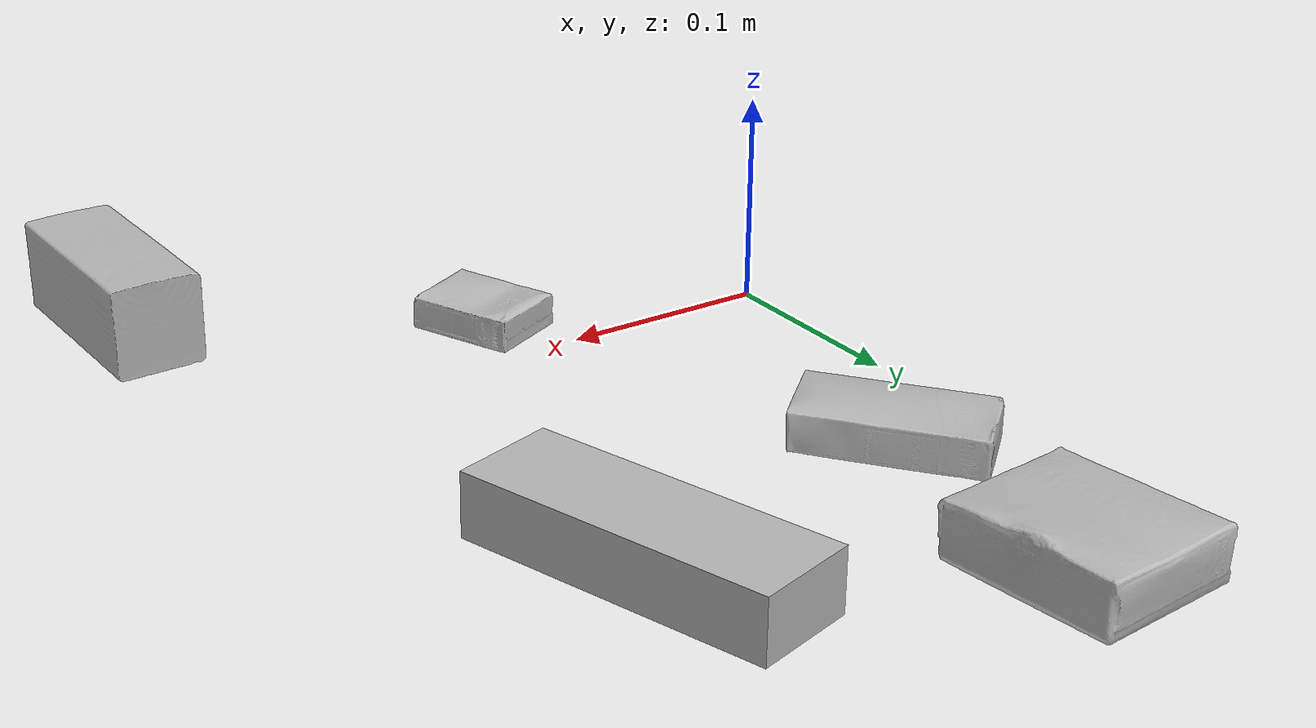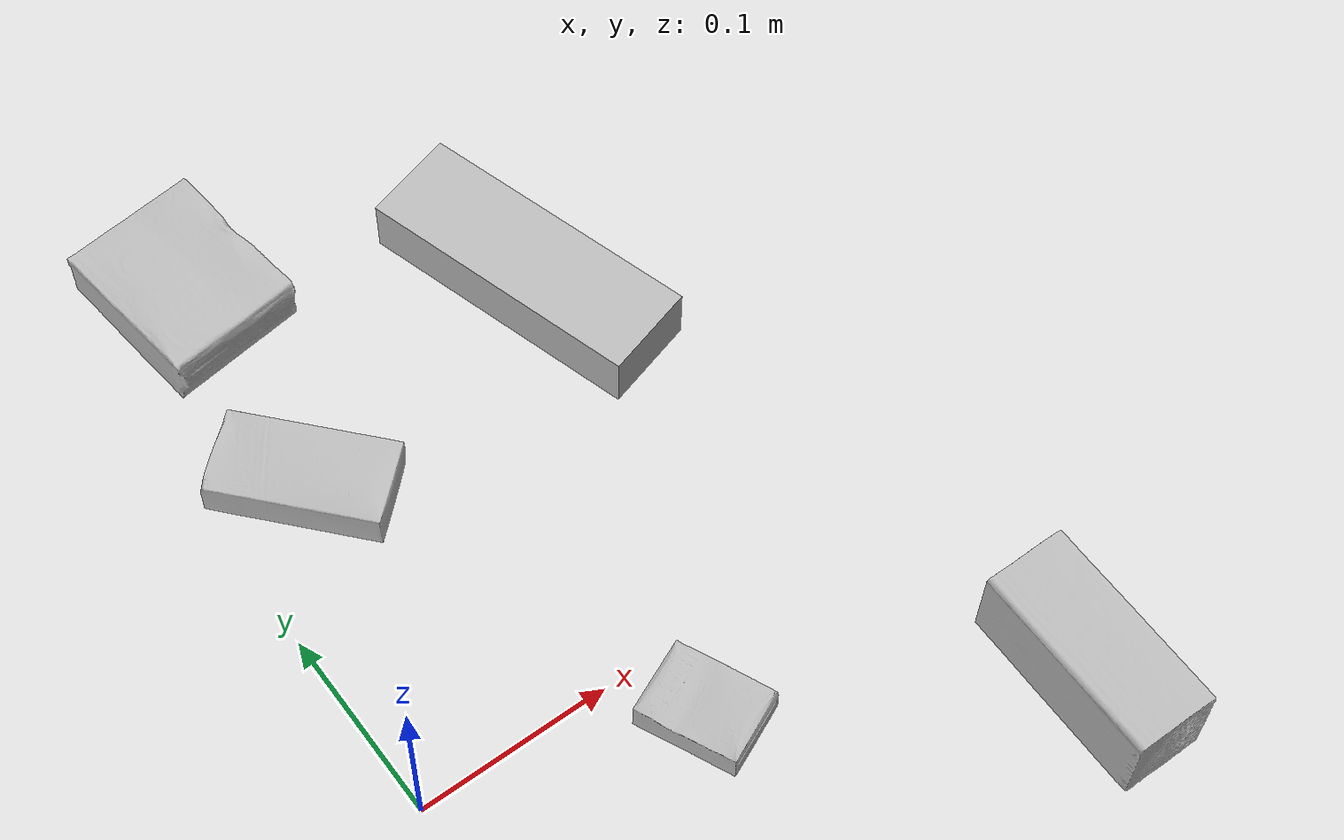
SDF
<sdf version="1.4">
  <world name="default">
    <light name="light1" type="point">
      <pose>0 0 1 0 0 0</pose>
      <diffuse>3 3 3 1</diffuse>
      <specular>3 3 3 1</specular>
    </light>
    <light name="light2" type="point">
      <pose>0 0.5 2 0 0 0</pose>
      <diffuse>1 1 1 1</diffuse>
      <specular>1 1 1 1</specular>
    </light>
    <light name="light3" type="point">
      <pose>0 0.5 2 0 0 0</pose>
      <diffuse>3 3 3 1</diffuse>
      <specular>3 3 3 1</specular>
    </light>
    <scene>
      <ambient>0.7 0.7 0.7</ambient>
    </scene>
    <model name="box1">
      <link name="link_box1">
        <collision name="default">
          <geometry>
            <mesh>
              <uri>model://sugar_box/collision_meshes/collision.obj</uri>
              <scale>0.5 0.5 0.5</scale>
            </mesh>
          </geometry>
          <surface>
            <friction>
              <ode>
                <mu>0.5</mu>
                <mu2>0.5</mu2>
              </ode>
            </friction>
          <contact>
        <ode>
            <max_vel>0</max_vel>
            <min_depth>0.0001</min_depth>
            <kp>1e8</kp>
        </ode>
    </contact></surface>
        </collision>
        <visual name="default">
          <geometry>
            <mesh>
              <uri>model://sugar_box/visual_meshes/visual.dae</uri>
              <scale>0.5 0.5 0.5</scale>
            </mesh>
          </geometry>
        </visual>
        <inertial>
          <mass>0.07249404489994049</mass>
          <pose>0.0005171863012947142 1.924554817378521e-05 -0.00018182402709499002 -0.00040462618385709627 0.0010506635220579009 0.0026153790218148127</pose>
          <inertia>
            <ixx>1.5100456e-05</ixx>
            <iyy>4.8807786e-05</iyy>
            <izz>5.842874e-05</izz>
            <ixy>0</ixy>
            <ixz>0</ixz>
            <iyz>0</iyz>
          </inertia>
        </inertial>
      </link>
      <pose>0.04720473662018776 0.1675044149160385 0.011399304494261742 0.000775826595961601 -0.023432953366189897 -0.8536132408805485</pose>
    </model>
    <model name="box2">
      <link name="link_box2">
        <collision name="default">
          <geometry>
            <mesh>
              <uri>model://cracker_box/collision_meshes/collision.obj</uri>
              <scale>0.25 0.25 0.25</scale>
            </mesh>
          </geometry>
          <surface>
            <friction>
              <ode>
                <mu>0.5</mu>
                <mu2>0.5</mu2>
              </ode>
            </friction>
          <contact>
        <ode>
            <max_vel>0</max_vel>
            <min_depth>0.0001</min_depth>
            <kp>1e8</kp>
        </ode>
    </contact></surface>
        </collision>
        <visual name="default">
          <geometry>
            <mesh>
              <uri>model://cracker_box/visual_meshes/visual.dae</uri>
              <scale>0.25 0.25 0.25</scale>
            </mesh>
          </geometry>
        </visual>
        <inertial>
          <mass>0.019660919904708862</mass>
          <pose>0.00023660410079173744 6.358561222441494e-05 -0.0004257383698131889 -0.00031620756431779875 -0.011106489600602764 0.0025467940703044144</pose>
          <inertia>
            <ixx>3.125538e-06</ixx>
            <iyy>5.1608768e-06</iyy>
            <izz>7.365045e-06</izz>
            <ixy>0</ixy>
            <ixz>0</ixz>
            <iyz>0</iyz>
          </inertia>
        </inertial>
      </link>
      <pose>0.12852908670902252 -0.03704531863331795 0.00909603200852871 -0.014050675812463534 -0.005016510934805351 -1.1532751026301569</pose>
    </model>
    <model name="box3">
      <link name="link_box3">
        <collision name="default">
          <geometry>
            <mesh>
              <uri>model://wood_block/collision_meshes/collision.obj</uri>
              <scale>0.5 0.5 0.5</scale>
            </mesh>
          </geometry>
          <surface>
            <friction>
              <ode>
                <mu>0.5</mu>
                <mu2>0.5</mu2>
              </ode>
            </friction>
          <contact>
        <ode>
            <max_vel>0</max_vel>
            <min_depth>0.0001</min_depth>
            <kp>1e8</kp>
        </ode>
    </contact></surface>
        </collision>
        <visual name="default">
          <geometry>
            <mesh>
              <uri>model://wood_block/visual_meshes/visual.dae</uri>
              <scale>0.5 0.5 0.5</scale>
            </mesh>
          </geometry>
        </visual>
        <inertial>
          <mass>0.22331082820892334</mass>
          <pose>-2.9066577553749084e-06 -0.000285404734313488 0.00013204292918089777 -0.0522110088927385 -0.005192696049127085 -0.006861379582621758</pose>
          <inertia>
            <ixx>7.470592e-05</ixx>
            <iyy>0.00023599603</iyy>
            <izz>0.0002351133</izz>
            <ixy>0</ixy>
            <ixz>0</ixz>
            <iyz>0</iyz>
          </inertia>
        </inertial>
      </link>
      <pose>0.2778858244419098 -0.12439197301864624 0.02262926660478115 -0.005208581463021499 0.005718706649688852 -1.567717331267613</pose>
    </model>
    <model name="box4">
      <link name="link_box4">
        <collision name="default">
          <geometry>
            <mesh>
              <uri>model://jenga/collision_meshes/collision.obj</uri>
              <scale>1.0 1.0 1.0</scale>
            </mesh>
          </geometry>
          <surface>
            <friction>
              <ode>
                <mu>0.5</mu>
                <mu2>0.5</mu2>
              </ode>
            </friction>
          <contact>
        <ode>
            <max_vel>0</max_vel>
            <min_depth>0.0001</min_depth>
            <kp>1e8</kp>
        </ode>
    </contact></surface>
        </collision>
        <visual name="default">
          <geometry>
            <mesh>
              <uri>model://jenga/visual_meshes/visual.dae</uri>
              <scale>1.0 1.0 1.0</scale>
            </mesh>
          </geometry>
        </visual>
        <inertial>
          <mass>0.1217927634716034</mass>
          <pose>-2.502855807051674e-07 -0.00010250010382151231 -4.0923401684267446e-05 0.0 -7.34215461761844e-07 0.0</pose>
          <inertia>
            <ixx>3.370301e-05</ixx>
            <iyy>0.00022837071</iyy>
            <izz>0.00024380515</izz>
            <ixy>0</ixy>
            <ixz>0</ixz>
            <iyz>0</iyz>
          </inertia>
        </inertial>
      </link>
      <pose>0.19750536978244781 0.19894899427890778 0.014999995008111 -6.714115833028882e-11 -9.099549288560723e-09 -1.2822951236912412</pose>
    </model>
    <model name="box5">
      <link name="link_box5">
        <collision name="default">
          <geometry>
            <mesh>
              <uri>model://gelatin_box/collision_meshes/collision.obj</uri>
              <scale>1.0 1.0 1.0</scale>
            </mesh>
          </geometry>
          <surface>
            <friction>
              <ode>
                <mu>0.5</mu>
                <mu2>0.5</mu2>
              </ode>
            </friction>
          <contact>
        <ode>
            <max_vel>0</max_vel>
            <min_depth>0.0001</min_depth>
            <kp>1e8</kp>
        </ode>
    </contact></surface>
        </collision>
        <visual name="default">
          <geometry>
            <mesh>
              <uri>model://gelatin_box/visual_meshes/visual.dae</uri>
              <scale>1.0 1.0 1.0</scale>
            </mesh>
          </geometry>
        </visual>
        <inertial>
          <mass>0.09479870647192001</mass>
          <pose>0.0004319618456065655 0.00011156871914863586 -0.0003640321083366871 -0.0010503720924044775 -0.0047558191559584585 0.01644055760930107</pose>
          <inertia>
            <ixx>6.6920154e-05</ixx>
            <iyy>4.780071e-05</iyy>
            <izz>0.00010186739</izz>
            <ixy>0</ixy>
            <ixz>0</ixz>
            <iyz>0</iyz>
          </inertia>
        </inertial>
      </link>
      <pose>0.05593165382742882 0.2893505096435547 0.015168312937021255 0.0055969215746506104 -0.007303962942041342 0.10840280712311239</pose>
    </model>
  <physics type="ode">
      <max_contacts>50</max_contacts>
      <ode>
        <solver>
          <type>quick</type>
          <iters>75</iters>
        </solver>
        <constraints>
          <contact_max_correcting_vel>0</contact_max_correcting_vel>
          <contact_surface_layer>0</contact_surface_layer>
        </constraints>
      </ode>
    </physics></world>
</sdf>
